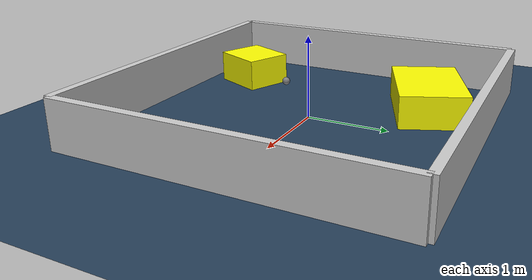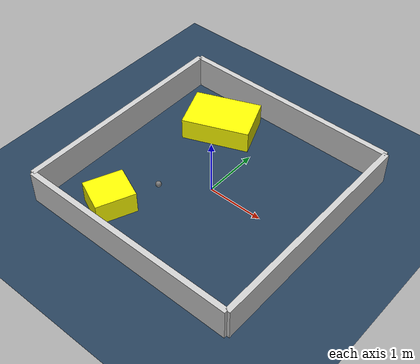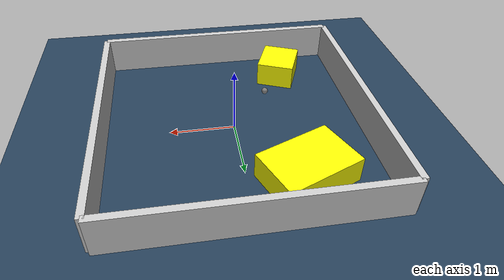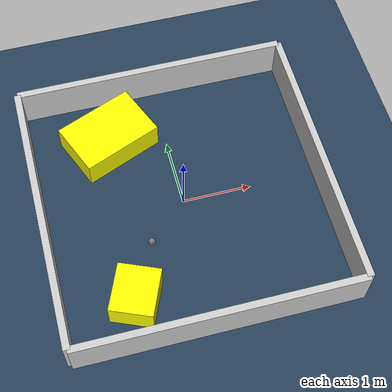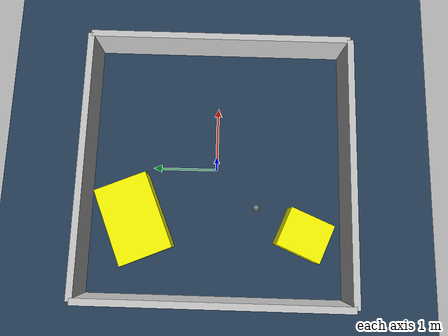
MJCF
<?xml version="1.0" ?>
<mujoco model="generated_environment">
  <option timestep="0.01" integrator="RK4" cone="elliptic"/>
  <default>
    <geom density="1"/>
  </default>
  <asset>
    <texture builtin="gradient" height="3072" rgb1="0.3 0.5 0.7" rgb2="0 0 0" type="skybox" width="512"/>
    <texture builtin="checker" height="300" mark="edge" markrgb="0.8 0.8 0.8" name="groundplane" rgb1="0.2 0.3 0.4" rgb2="0.1 0.2 0.3" type="2d" width="300"/>
    <material name="groundplane" reflectance="0.2" texrepeat="5 5" texture="groundplane" texuniform="true"/>
    <material name="robot" rgba="0.0 1.0 0.0 1"/>
  </asset>
  <worldbody>
    <light dir="0 0 -1" directional="true" pos="0 0 1.5"/>
    <geom condim="4" friction="1.0 0.005 0.001" material="groundplane" name="floor" size="0 0 0.05" type="plane"/>
    <body name="walls">
      <geom name="wall_1" condim="4" pos="-2.0 0.0 0.3" rgba="0.800000011920929 0.800000011920929 0.800000011920929 1.0" size="0.05 2.0 0.3" type="box"/>
      <geom name="wall_2" condim="4" pos="2.0 0.0 0.3" rgba="0.800000011920929 0.800000011920929 0.800000011920929 1.0" size="0.05 2.0 0.3" type="box"/>
      <geom name="wall_3" condim="4" pos="0.0 -2.0 0.3" rgba="0.800000011920929 0.800000011920929 0.800000011920929 1.0" size="2.0 0.05 0.3" type="box"/>
      <geom name="wall_4" condim="4" pos="0.0 2.0 0.3" rgba="0.800000011920929 0.800000011920929 0.800000011920929 1.0" size="2.0 0.05 0.3" type="box"/>
    </body>
    <body name="robot">
      <joint name="joint_x" type="slide" pos="0 0 0" axis="1 0 0"/>
      <joint name="joint_y" type="slide" pos="0 0 0" axis="0 1 0"/>
      <geom name="robot" type="sphere" pos="-0.60371073491407 -0.6197287212297573 0.2" size="0.05" mass="5." friction="1.0 0.005 0.0001" condim="4"/>
      <site name="sensor_ball"/>
    </body>
    <body name="obstacle_1_movable">
      <geom name="obstacle_1_movable" condim="4" pos="-0.9903944885421414 -1.3335897830234555 0.2" euler="0 0 246.96055494808135" friction="1.0 0.005 0.001" rgba="1 1 0 1" size="0.3444315669866306 0.30194179141969374 0.2" type="box" mass="0.1"/>
      <joint type="free"/>
    </body>
    <body name="obstacle_2_movable">
      <geom name="obstacle_2_movable" condim="4" pos="-0.8196777814565478 1.2287128632044615 0.2" euler="0 0 202.31600765341065" friction="1.0 0.005 0.001" rgba="1 1 0 1" size="0.5982738904550648 0.4083510800640781 0.2" type="box" mass="0.1"/>
      <joint type="free"/>
    </body>
  </worldbody>
  <actuator>
    <motor name="actuator_x" joint="joint_x" gear="1" ctrlrange="-1 1"/>
    <motor name="actuator_y" joint="joint_y" gear="1" ctrlrange="-1 1"/>
  </actuator>
</mujoco>
